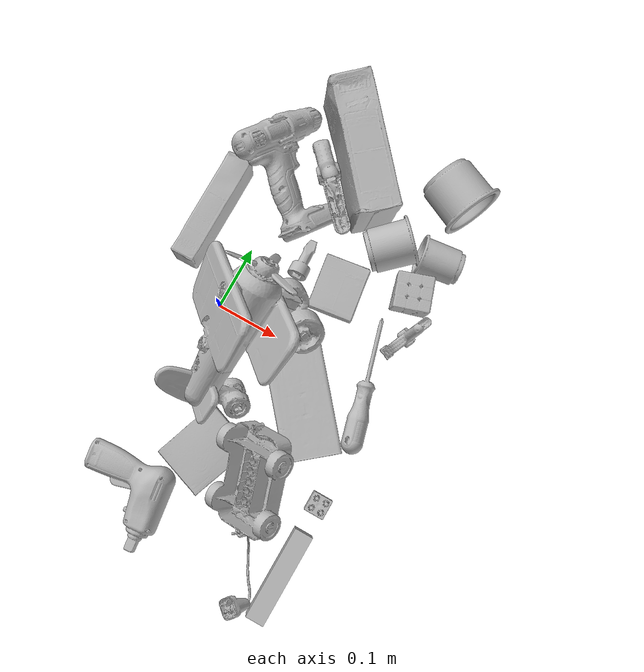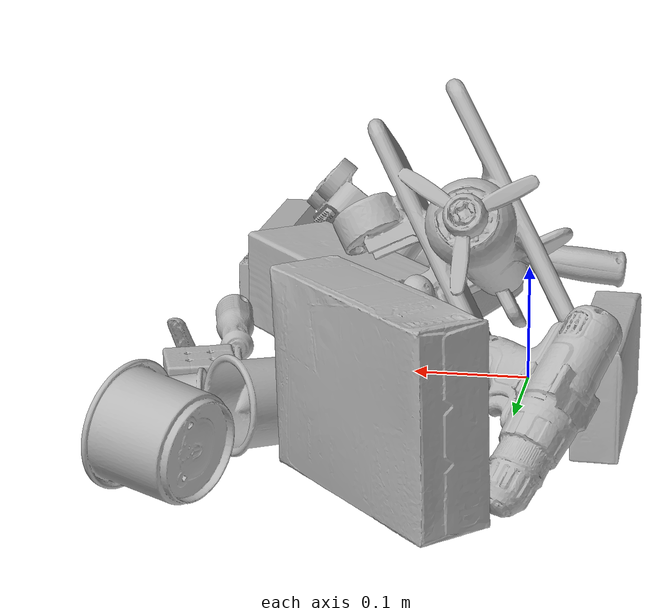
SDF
<sdf version="1.4">
  <world name="default">
    <light name="light1" type="point">
      <pose>0 0 1 0 0 0</pose>
      <diffuse>3 3 3 1</diffuse>
      <specular>3 3 3 1</specular>
    </light>
    <light name="light2" type="point">
      <pose>0 0.5 2 0 0 0</pose>
      <diffuse>1 1 1 1</diffuse>
      <specular>1 1 1 1</specular>
    </light>
    <light name="light3" type="point">
      <pose>0 0.5 2 0 0 0</pose>
      <diffuse>3 3 3 1</diffuse>
      <specular>3 3 3 1</specular>
    </light>
    <scene>
      <ambient>0.7 0.7 0.7</ambient>
    </scene>
    <model name="box21">
      <link name="link_box21">
        <collision name="default">
          <geometry>
            <mesh>
              <uri>model://cracker_box/collision_meshes/collision.obj</uri>
              <scale>1.0 1.0 1.0</scale>
            </mesh>
          </geometry>
          <surface>
            <friction>
              <ode>
                <mu>0.5</mu>
                <mu2>0.5</mu2>
              </ode>
            </friction>
          <contact>
        <ode>
            <max_vel>0</max_vel>
            <min_depth>0.0001</min_depth>
            <kp>1e8</kp>
        </ode>
    </contact></surface>
        </collision>
        <visual name="default">
          <geometry>
            <mesh>
              <uri>model://cracker_box/visual_meshes/visual.dae</uri>
              <scale>1.0 1.0 1.0</scale>
            </mesh>
          </geometry>
        </visual>
        <inertial>
          <mass>2.2869980335235596</mass>
          <pose>0.0009464151225984097 0.0002543425071053207 -0.0017029535956680775 -0.0003162075418873318 -0.011106487737663914 0.0025467956997025456</pose>
          <inertia>
            <ixx>0.005817102</ixx>
            <iyy>0.009605178</iyy>
            <izz>0.013707472</izz>
            <ixy>0</ixy>
            <ixz>0</ixz>
            <iyz>0</iyz>
          </inertia>
        </inertial>
      </link>
      <pose>0.07642360776662827 0.2986048460006714 0.08175765722990036 1.5452337117644157 0.009040082936226641 -0.8332308012464151</pose>
    </model>
    <model name="box22">
      <link name="link_box22">
        <collision name="default">
          <geometry>
            <mesh>
              <uri>model://pudding_box/collision_meshes/collision.obj</uri>
              <scale>1.0 1.0 1.0</scale>
            </mesh>
          </geometry>
          <surface>
            <friction>
              <ode>
                <mu>0.5</mu>
                <mu2>0.5</mu2>
              </ode>
            </friction>
          <contact>
        <ode>
            <max_vel>0</max_vel>
            <min_depth>0.0001</min_depth>
            <kp>1e8</kp>
        </ode>
    </contact></surface>
        </collision>
        <visual name="default">
          <geometry>
            <mesh>
              <uri>model://pudding_box/visual_meshes/visual.dae</uri>
              <scale>1.0 1.0 1.0</scale>
            </mesh>
          </geometry>
        </visual>
        <inertial>
          <mass>0.5370154976844788</mass>
          <pose>0.0004894821904599667 0.0008067885646596551 -0.0005188827635720372 0.005213101796859606 -0.006603800100757192 0.02007981956729938</pose>
          <inertia>
            <ixx>0.0006070684</ixx>
            <iyy>0.00040843996</iyy>
            <izz>0.00089649507</izz>
            <ixy>0</ixy>
            <ixz>0</ixz>
            <iyz>0</iyz>
          </inertia>
        </inertial>
      </link>
      <pose>0.09227722883224487 -0.20495690405368805 0.019725816324353218 0.02234562550926183 -0.011389973587738375 2.7917386545931206</pose>
    </model>
    <model name="box23">
      <link name="link_box23">
        <collision name="default">
          <geometry>
            <mesh>
              <uri>model://jenga/collision_meshes/collision.obj</uri>
              <scale>1.0 1.0 1.0</scale>
            </mesh>
          </geometry>
          <surface>
            <friction>
              <ode>
                <mu>0.5</mu>
                <mu2>0.5</mu2>
              </ode>
            </friction>
          <contact>
        <ode>
            <max_vel>0</max_vel>
            <min_depth>0.0001</min_depth>
            <kp>1e8</kp>
        </ode>
    </contact></surface>
        </collision>
        <visual name="default">
          <geometry>
            <mesh>
              <uri>model://jenga/visual_meshes/visual.dae</uri>
              <scale>1.0 1.0 1.0</scale>
            </mesh>
          </geometry>
        </visual>
        <inertial>
          <mass>0.17325031757354736</mass>
          <pose>-2.502855807051674e-07 -0.0001025000965455547 -4.0923401684267446e-05 0.0 -7.34215461761844e-07 0.0</pose>
          <inertia>
            <ixx>4.7942573e-05</ixx>
            <iyy>0.00032485754</iyy>
            <izz>0.00034681303</izz>
            <ixy>0</ixy>
            <ixz>0</ixz>
            <iyz>0</iyz>
          </inertia>
        </inertial>
      </link>
      <pose>0.2843685746192932 -0.31320029497146606 0.02470194734632969 1.5774979266119706 -1.3326990047705206e-07 1.5676520335808726</pose>
    </model>
    <model name="cup1">
      <link name="link_cup1">
        <collision name="default">
          <geometry>
            <mesh>
              <uri>model://c_cups/collision_meshes/collision.obj</uri>
              <scale>1.0 1.0 1.0</scale>
            </mesh>
          </geometry>
          <surface>
            <friction>
              <ode>
                <mu>0.5</mu>
                <mu2>0.5</mu2>
              </ode>
            </friction>
          <contact>
        <ode>
            <max_vel>0</max_vel>
            <min_depth>0.0001</min_depth>
            <kp>1e8</kp>
        </ode>
    </contact></surface>
        </collision>
        <visual name="default">
          <geometry>
            <mesh>
              <uri>model://c_cups/visual_meshes/visual.dae</uri>
              <scale>1.0 1.0 1.0</scale>
            </mesh>
          </geometry>
        </visual>
        <inertial>
          <mass>0.033937059342861176</mass>
          <pose>0.0007237257086671889 0.002015391131862998 -0.0012750985333696008 0.3021568203324006 0.0134615240317058 -0.08771816491093205</pose>
          <inertia>
            <ixx>2.5238536e-05</ixx>
            <iyy>2.4792533e-05</iyy>
            <izz>2.2320162e-05</izz>
            <ixy>0</ixy>
            <ixz>0</ixz>
            <iyz>0</iyz>
          </inertia>
        </inertial>
      </link>
      <pose>0.26281049847602844 0.22354303300380707 0.030400950461626053 -1.3877668360077617 -1.0193759964004439 1.570089704909422</pose>
    </model>
    <model name="cup2">
      <link name="link_cup2">
        <collision name="default">
          <geometry>
            <mesh>
              <uri>model://f_cups/collision_meshes/collision.obj</uri>
              <scale>1.0 1.0 1.0</scale>
            </mesh>
          </geometry>
          <surface>
            <friction>
              <ode>
                <mu>0.5</mu>
                <mu2>0.5</mu2>
              </ode>
            </friction>
          <contact>
        <ode>
            <max_vel>0</max_vel>
            <min_depth>0.0001</min_depth>
            <kp>1e8</kp>
        </ode>
    </contact></surface>
        </collision>
        <visual name="default">
          <geometry>
            <mesh>
              <uri>model://f_cups/visual_meshes/visual.dae</uri>
              <scale>1.0 1.0 1.0</scale>
            </mesh>
          </geometry>
        </visual>
        <inertial>
          <mass>0.10278050601482391</mass>
          <pose>-0.003171466989442706 -0.0006240068469196558 -0.003655537962913513 0.7862283183637603 -0.2607933822369466 -0.1823733550036739</pose>
          <inertia>
            <ixx>9.661645e-05</ixx>
            <iyy>0.00010135175</iyy>
            <izz>0.000105510015</izz>
            <ixy>0</ixy>
            <ixz>0</ixz>
            <iyz>0</iyz>
          </inertia>
        </inertial>
      </link>
      <pose>0.18506300449371338 0.20598943531513214 0.03717263787984848 1.4751300102046232 0.18538346134482223 2.3107758994582586</pose>
    </model>
    <model name="box11">
      <link name="link_box11">
        <collision name="default">
          <geometry>
            <mesh>
              <uri>model://wood_block/collision_meshes/collision.obj</uri>
              <scale>1.0 1.0 1.0</scale>
            </mesh>
          </geometry>
          <surface>
            <friction>
              <ode>
                <mu>0.5</mu>
                <mu2>0.5</mu2>
              </ode>
            </friction>
          <contact>
        <ode>
            <max_vel>0</max_vel>
            <min_depth>0.0001</min_depth>
            <kp>1e8</kp>
        </ode>
    </contact></surface>
        </collision>
        <visual name="default">
          <geometry>
            <mesh>
              <uri>model://wood_block/visual_meshes/visual.dae</uri>
              <scale>1.0 1.0 1.0</scale>
            </mesh>
          </geometry>
        </visual>
        <inertial>
          <mass>2.321592330932617</mass>
          <pose>-5.813315056002466e-06 -0.000570809468626976 0.0002640858292579651 -0.052209755297172346 -0.005192694580027673 -0.006861376555374886</pose>
          <inertia>
            <ixx>0.0031066423</ixx>
            <iyy>0.009813884</iyy>
            <izz>0.009777175</izz>
            <ixy>0</ixy>
            <ixz>0</ixz>
            <iyz>0</iyz>
          </inertia>
        </inertial>
      </link>
      <pose>0.1743258535861969 -0.05588394030928612 0.045591291040182114 3.1414547272408853 -0.005752191362779977 2.270790521032804</pose>
    </model>
    <model name="box12">
      <link name="link_box12">
        <collision name="default">
          <geometry>
            <mesh>
              <uri>model://gelatin_box/collision_meshes/collision.obj</uri>
              <scale>1.0 1.0 1.0</scale>
            </mesh>
          </geometry>
          <surface>
            <friction>
              <ode>
                <mu>0.5</mu>
                <mu2>0.5</mu2>
              </ode>
            </friction>
          <contact>
        <ode>
            <max_vel>0</max_vel>
            <min_depth>0.0001</min_depth>
            <kp>1e8</kp>
        </ode>
    </contact></surface>
        </collision>
        <visual name="default">
          <geometry>
            <mesh>
              <uri>model://gelatin_box/visual_meshes/visual.dae</uri>
              <scale>1.0 1.0 1.0</scale>
            </mesh>
          </geometry>
        </visual>
        <inertial>
          <mass>0.2263340801000595</mass>
          <pose>0.0004319618456065655 0.00011156871914863586 -0.00036403207923285663 -0.001050371981036731 -0.004755818689382226 0.016440561334450605</pose>
          <inertia>
            <ixx>0.00015977336</ixx>
            <iyy>0.00011412529</iyy>
            <izz>0.00024321067</izz>
            <ixy>0</ixy>
            <ixz>0</ixz>
            <iyz>0</iyz>
          </inertia>
        </inertial>
      </link>
      <pose>0.14812417328357697 0.11339707672595978 0.014580637216567993 -3.1258657428454337 -0.025719267324088815 0.1459918071344435</pose>
    </model>
    <model name="box13">
      <link name="link_box13">
        <collision name="default">
          <geometry>
            <mesh>
              <uri>model://sugar_box/collision_meshes/collision.obj</uri>
              <scale>1.0 1.0 1.0</scale>
            </mesh>
          </geometry>
          <surface>
            <friction>
              <ode>
                <mu>0.5</mu>
                <mu2>0.5</mu2>
              </ode>
            </friction>
          <contact>
        <ode>
            <max_vel>0</max_vel>
            <min_depth>0.0001</min_depth>
            <kp>1e8</kp>
        </ode>
    </contact></surface>
        </collision>
        <visual name="default">
          <geometry>
            <mesh>
              <uri>model://sugar_box/visual_meshes/visual.dae</uri>
              <scale>1.0 1.0 1.0</scale>
            </mesh>
          </geometry>
        </visual>
        <inertial>
          <mass>0.4976349174976349</mass>
          <pose>0.0010343727190047503 3.849109634757042e-05 -0.00036364805418998003 -0.0004046263004245651 0.001050663405794887 0.002615379021776999</pose>
          <inertia>
            <ixx>0.0004146281</ixx>
            <iyy>0.0013401629</iyy>
            <izz>0.0016043353</izz>
            <ixy>0</ixy>
            <ixz>0</ixz>
            <iyz>0</iyz>
          </inertia>
        </inertial>
      </link>
      <pose>-0.07693026214838028 0.11769822239875793 0.04652085527777672 1.5625406749442026 0.001469083262630494 1.5600469188925434</pose>
    </model>
    <model name="box14">
      <link name="link_box14">
        <collision name="default">
          <geometry>
            <mesh>
              <uri>model://rubiks_cube/collision_meshes/collision.obj</uri>
              <scale>1.0 1.0 1.0</scale>
            </mesh>
          </geometry>
          <surface>
            <friction>
              <ode>
                <mu>0.5</mu>
                <mu2>0.5</mu2>
              </ode>
            </friction>
          <contact>
        <ode>
            <max_vel>0</max_vel>
            <min_depth>0.0001</min_depth>
            <kp>1e8</kp>
        </ode>
    </contact></surface>
        </collision>
        <visual name="default">
          <geometry>
            <mesh>
              <uri>model://rubiks_cube/visual_meshes/visual.dae</uri>
              <scale>1.0 1.0 1.0</scale>
            </mesh>
          </geometry>
        </visual>
        <inertial>
          <mass>0.2531126141548157</mass>
          <pose>2.6721041649580002e-05 5.2569666877388954e-05 -7.264316536748083e-06 -0.05467274129792389 -0.0981396008906979 -0.0344563195746163</pose>
          <inertia>
            <ixx>0.00013986173</ixx>
            <iyy>0.00013920949</iyy>
            <izz>0.00014102072</izz>
            <ixy>0</ixy>
            <ixz>0</ixz>
            <iyz>0</iyz>
          </inertia>
        </inertial>
      </link>
      <pose>0.250975102186203 0.15977847576141357 0.02867899462580681 -1.6350292372501812e-06 -4.811969998222924e-06 1.8902892156201194</pose>
    </model>
    <model name="cup15">
      <link name="link_cup15">
        <collision name="default">
          <geometry>
            <mesh>
              <uri>model://j_cups/collision_meshes/collision.obj</uri>
              <scale>1.0 1.0 1.0</scale>
            </mesh>
          </geometry>
          <surface>
            <friction>
              <ode>
                <mu>0.5</mu>
                <mu2>0.5</mu2>
              </ode>
            </friction>
          <contact>
        <ode>
            <max_vel>0</max_vel>
            <min_depth>0.0001</min_depth>
            <kp>1e8</kp>
        </ode>
    </contact></surface>
        </collision>
        <visual name="default">
          <geometry>
            <mesh>
              <uri>model://j_cups/visual_meshes/visual.dae</uri>
              <scale>1.0 1.0 1.0</scale>
            </mesh>
          </geometry>
        </visual>
        <inertial>
          <mass>0.12765173614025116</mass>
          <pose>0.0006164864171296358 0.0005398980574682355 -0.0013479006011039019 0.030303852295551513 0.03757989298695449 0.4386938541947324</pose>
          <inertia>
            <ixx>0.00018743309</ixx>
            <iyy>0.00018938213</iyy>
            <izz>0.0002160715</izz>
            <ixy>0</ixy>
            <ixz>0</ixz>
            <iyz>0</iyz>
          </inertia>
        </inertial>
      </link>
      <pose>0.23703286051750183 0.3266148269176483 0.047030575573444366 -1.1348675793045175 -1.2879766357241667 -2.4163097315958804</pose>
    </model>
    <model name="toy1">
      <link name="link_toy1">
        <collision name="default">
          <geometry>
            <mesh>
              <uri>model://f_lego_duplo/collision_meshes/collision.obj</uri>
              <scale>1.0 1.0 1.0</scale>
            </mesh>
          </geometry>
          <surface>
            <friction>
              <ode>
                <mu>0.5</mu>
                <mu2>0.5</mu2>
              </ode>
            </friction>
          <contact>
        <ode>
            <max_vel>0</max_vel>
            <min_depth>0.0001</min_depth>
            <kp>1e8</kp>
        </ode>
    </contact></surface>
        </collision>
        <visual name="default">
          <geometry>
            <mesh>
              <uri>model://f_lego_duplo/visual_meshes/visual.dae</uri>
              <scale>1.0 1.0 1.0</scale>
            </mesh>
          </geometry>
        </visual>
        <inertial>
          <mass>0.04013235494494438</mass>
          <pose>2.369376306887716e-05 0.00013393163681030273 0.0018837876850739121 0.029838734112773806 -0.014424842824784668 -0.6756708500035773</pose>
          <inertia>
            <ixx>8.480189e-06</ixx>
            <iyy>8.555736e-06</iyy>
            <izz>7.361164e-06</izz>
            <ixy>0</ixy>
            <ixz>0</ixz>
            <iyz>0</iyz>
          </inertia>
        </inertial>
      </link>
      <pose>0.28372010588645935 -0.1919807344675064 0.021870998665690422 5.5897316216656684e-08 9.731289608670825e-08 0.0003691152462295779</pose>
    </model>
    <model name="toy2">
      <link name="link_toy2">
        <collision name="default">
          <geometry>
            <mesh>
              <uri>model://e_toy_airplane/collision_meshes/collision.obj</uri>
              <scale>1.0 1.0 1.0</scale>
            </mesh>
          </geometry>
          <surface>
            <friction>
              <ode>
                <mu>0.5</mu>
                <mu2>0.5</mu2>
              </ode>
            </friction>
          <contact>
        <ode>
            <max_vel>0</max_vel>
            <min_depth>0.0001</min_depth>
            <kp>1e8</kp>
        </ode>
    </contact></surface>
        </collision>
        <visual name="default">
          <geometry>
            <mesh>
              <uri>model://e_toy_airplane/visual_meshes/visual.dae</uri>
              <scale>1.0 1.0 1.0</scale>
            </mesh>
          </geometry>
        </visual>
        <inertial>
          <mass>0.030105752870440483</mass>
          <pose>0.00011740480840671808 -2.248285454697907e-05 -0.011187204159796238 0.0055184715057391125 0.009228317867647443 0.150413097465581</pose>
          <inertia>
            <ixx>9.18862e-06</ixx>
            <iyy>9.094625e-06</iyy>
            <izz>2.761542e-06</izz>
            <ixy>0</ixy>
            <ixz>0</ixz>
            <iyz>0</iyz>
          </inertia>
        </inertial>
      </link>
      <pose>0.07934314012527466 0.12911579012870789 0.010332439094781876 2.425658909500455 -1.197790293794063 2.377522766539584</pose>
    </model>
    <model name="toy3">
      <link name="link_toy3">
        <collision name="default">
          <geometry>
            <mesh>
              <uri>model://g_lego_duplo/collision_meshes/collision.obj</uri>
              <scale>1.0 1.0 1.0</scale>
            </mesh>
          </geometry>
          <surface>
            <friction>
              <ode>
                <mu>0.5</mu>
                <mu2>0.5</mu2>
              </ode>
            </friction>
          <contact>
        <ode>
            <max_vel>0</max_vel>
            <min_depth>0.0001</min_depth>
            <kp>1e8</kp>
        </ode>
    </contact></surface>
        </collision>
        <visual name="default">
          <geometry>
            <mesh>
              <uri>model://g_lego_duplo/visual_meshes/visual.dae</uri>
              <scale>1.0 1.0 1.0</scale>
            </mesh>
          </geometry>
        </visual>
        <inertial>
          <mass>0.4529305100440979</mass>
          <pose>-0.050047703087329865 0.0017554633086547256 0.0038806775119155645 0.010963008114131517 0.03810824387856379 -0.09653032518797504</pose>
          <inertia>
            <ixx>0.00065630145</ixx>
            <iyy>0.0019842102</iyy>
            <izz>0.0024823209</izz>
            <ixy>0</ixy>
            <ixz>0</ixz>
            <iyz>0</iyz>
          </inertia>
        </inertial>
      </link>
      <pose>0.19825401902198792 -0.2611597180366516 0.05431489646434784 -2.4107783311412385 0.34082740779353776 -1.258285916445851</pose>
    </model>
    <model name="toy4">
      <link name="link_toy4">
        <collision name="default">
          <geometry>
            <mesh>
              <uri>model://b_lego_duplo/collision_meshes/collision.obj</uri>
              <scale>1.0 1.0 1.0</scale>
            </mesh>
          </geometry>
          <surface>
            <friction>
              <ode>
                <mu>0.5</mu>
                <mu2>0.5</mu2>
              </ode>
            </friction>
          <contact>
        <ode>
            <max_vel>0</max_vel>
            <min_depth>0.0001</min_depth>
            <kp>1e8</kp>
        </ode>
    </contact></surface>
        </collision>
        <visual name="default">
          <geometry>
            <mesh>
              <uri>model://b_lego_duplo/visual_meshes/visual.dae</uri>
              <scale>1.0 1.0 1.0</scale>
            </mesh>
          </geometry>
        </visual>
        <inertial>
          <mass>0.018499748781323433</mass>
          <pose>-0.00011053003981942311 -9.15247255761642e-06 0.001929429592564702 -0.037494549291744686 -0.026354734626349716 0.4518828938821803</pose>
          <inertia>
            <ixx>3.786112e-06</ixx>
            <iyy>3.8115643e-06</iyy>
            <izz>3.3733036e-06</izz>
            <ixy>0</ixy>
            <ixz>0</ixz>
            <iyz>0</iyz>
          </inertia>
        </inertial>
      </link>
      <pose>0.18196789920330048 -0.1755325049161911 0.01615239679813385 -3.1233005130983664 1.5624415768349118 -1.033879399561042</pose>
    </model>
    <model name="toy5">
      <link name="link_toy5">
        <collision name="default">
          <geometry>
            <mesh>
              <uri>model://b_toy_airplane/collision_meshes/collision.obj</uri>
              <scale>1.0 1.0 1.0</scale>
            </mesh>
          </geometry>
          <surface>
            <friction>
              <ode>
                <mu>0.5</mu>
                <mu2>0.5</mu2>
              </ode>
            </friction>
          <contact>
        <ode>
            <max_vel>0</max_vel>
            <min_depth>0.0001</min_depth>
            <kp>1e8</kp>
        </ode>
    </contact></surface>
        </collision>
        <visual name="default">
          <geometry>
            <mesh>
              <uri>model://b_toy_airplane/visual_meshes/visual.dae</uri>
              <scale>1.0 1.0 1.0</scale>
            </mesh>
          </geometry>
        </visual>
        <inertial>
          <mass>0.38904744386672974</mass>
          <pose>0.00508136348798871 0.004015582147985697 0.00954306498169899 -0.040018071915393034 -0.04022181905785318 -0.5601502897874057</pose>
          <inertia>
            <ixx>0.00072227366</ixx>
            <iyy>0.0002886998</iyy>
            <izz>0.0008985803</izz>
            <ixy>0</ixy>
            <ixz>0</ixz>
            <iyz>0</iyz>
          </inertia>
        </inertial>
      </link>
      <pose>0.030226556584239006 -0.30101969838142395 0.016977878287434578 0.18487657136268104 0.11349915661545076 -1.4455842481957561</pose>
    </model>
    <model name="toy6">
      <link name="link_toy6">
        <collision name="default">
          <geometry>
            <mesh>
              <uri>model://a_toy_airplane/collision_meshes/collision.obj</uri>
              <scale>1.0 1.0 1.0</scale>
            </mesh>
          </geometry>
          <surface>
            <friction>
              <ode>
                <mu>0.5</mu>
                <mu2>0.5</mu2>
              </ode>
            </friction>
          <contact>
        <ode>
            <max_vel>0</max_vel>
            <min_depth>0.0001</min_depth>
            <kp>1e8</kp>
        </ode>
    </contact></surface>
        </collision>
        <visual name="default">
          <geometry>
            <mesh>
              <uri>model://a_toy_airplane/visual_meshes/visual.dae</uri>
              <scale>1.0 1.0 1.0</scale>
            </mesh>
          </geometry>
        </visual>
        <inertial>
          <mass>2.344027519226074</mass>
          <pose>0.025165099650621414 -0.003707322059199214 -0.0011962436838075519 -0.012016950381748406 -0.14663507119063698 0.004149124939747771</pose>
          <inertia>
            <ixx>0.008512287</ixx>
            <iyy>0.012404123</iyy>
            <izz>0.014523712</izz>
            <ixy>0</ixy>
            <ixz>0</ixz>
            <iyz>0</iyz>
          </inertia>
        </inertial>
      </link>
      <pose>0.04519807919859886 -0.037519581615924835 0.10102620720863342 -0.9810159215356118 -0.379012198442214 1.3799246676024555</pose>
    </model>
    <model name="hardware1">
      <link name="link_hardware1">
        <collision name="default">
          <geometry>
            <mesh>
              <uri>model://power_drill/collision_meshes/collision.obj</uri>
              <scale>1.0 1.0 1.0</scale>
            </mesh>
          </geometry>
          <surface>
            <friction>
              <ode>
                <mu>0.5</mu>
                <mu2>0.5</mu2>
              </ode>
            </friction>
          <contact>
        <ode>
            <max_vel>0</max_vel>
            <min_depth>0.0001</min_depth>
            <kp>1e8</kp>
        </ode>
    </contact></surface>
        </collision>
        <visual name="default">
          <geometry>
            <mesh>
              <uri>model://power_drill/visual_meshes/visual.dae</uri>
              <scale>1.0 1.0 1.0</scale>
            </mesh>
          </geometry>
        </visual>
        <inertial>
          <mass>0.3504050374031067</mass>
          <pose>-0.014780547469854355 0.014369429089128971 0.0012414171360433102 0.0046091621872236125 0.004073022304059966 -0.18362696816981472</pose>
          <inertia>
            <ixx>0.001427917</ixx>
            <iyy>0.0005618108</iyy>
            <izz>0.0018858167</izz>
            <ixy>0</ixy>
            <ixz>0</ixz>
            <iyz>0</iyz>
          </inertia>
        </inertial>
      </link>
      <pose>0.0049886759370565414 0.23180387914180756 0.05289941281080246 0.22365477012943372 0.6829141063987493 1.0830324239552784</pose>
    </model>
    <model name="hardware2">
      <link name="link_hardware2">
        <collision name="default">
          <geometry>
            <mesh>
              <uri>model://phillips_screwdriver/collision_meshes/collision.obj</uri>
              <scale>1.0 1.0 1.0</scale>
            </mesh>
          </geometry>
          <surface>
            <friction>
              <ode>
                <mu>0.5</mu>
                <mu2>0.5</mu2>
              </ode>
            </friction>
          <contact>
        <ode>
            <max_vel>0</max_vel>
            <min_depth>0.0001</min_depth>
            <kp>1e8</kp>
        </ode>
    </contact></surface>
        </collision>
        <visual name="default">
          <geometry>
            <mesh>
              <uri>model://phillips_screwdriver/visual_meshes/visual.dae</uri>
              <scale>1.0 1.0 1.0</scale>
            </mesh>
          </geometry>
        </visual>
        <inertial>
          <mass>0.06613585352897644</mass>
          <pose>-0.04777182638645172 0.0010362302418798208 -0.000455554953077808 -0.157256923583716 0.005850995849984215 -0.0021567369270283215</pose>
          <inertia>
            <ixx>7.770284e-06</ixx>
            <iyy>9.742579e-05</iyy>
            <izz>9.7508564e-05</izz>
            <ixy>0</ixy>
            <ixz>0</ixz>
            <iyz>0</iyz>
          </inertia>
        </inertial>
      </link>
      <pose>0.2581939995288849 -0.0002223961055278778 0.015013089403510094 -2.2503658697905218 0.04974339907015083 1.841850258468456</pose>
    </model>
    <model name="hardware3">
      <link name="link_hardware3">
        <collision name="default">
          <geometry>
            <mesh>
              <uri>model://large_clamp/collision_meshes/collision.obj</uri>
              <scale>1.0 1.0 1.0</scale>
            </mesh>
          </geometry>
          <surface>
            <friction>
              <ode>
                <mu>0.5</mu>
                <mu2>0.5</mu2>
              </ode>
            </friction>
          <contact>
        <ode>
            <max_vel>0</max_vel>
            <min_depth>0.0001</min_depth>
            <kp>1e8</kp>
        </ode>
    </contact></surface>
        </collision>
        <visual name="default">
          <geometry>
            <mesh>
              <uri>model://large_clamp/visual_meshes/visual.dae</uri>
              <scale>1.0 1.0 1.0</scale>
            </mesh>
          </geometry>
        </visual>
        <inertial>
          <mass>0.0812491774559021</mass>
          <pose>0.00636935792863369 0.00035856812610290945 -0.0001839803153416142 -0.0021330695247891995 0.009671592144941876 0.026633191629386817</pose>
          <inertia>
            <ixx>7.1684015e-05</ixx>
            <iyy>0.00013613176</iyy>
            <izz>0.00019693196</izz>
            <ixy>0</ixy>
            <ixz>0</ixz>
            <iyz>0</iyz>
          </inertia>
        </inertial>
      </link>
      <pose>0.04958570748567581 0.25256142020225525 0.060300737619400024 -1.6504776883491477 0.7206737918284608 2.2803757041035415</pose>
    </model>
    <model name="hardware4">
      <link name="link_hardware4">
        <collision name="default">
          <geometry>
            <mesh>
              <uri>model://medium_clamp/collision_meshes/collision.obj</uri>
              <scale>1.0 1.0 1.0</scale>
            </mesh>
          </geometry>
          <surface>
            <friction>
              <ode>
                <mu>0.5</mu>
                <mu2>0.5</mu2>
              </ode>
            </friction>
          <contact>
        <ode>
            <max_vel>0</max_vel>
            <min_depth>0.0001</min_depth>
            <kp>1e8</kp>
        </ode>
    </contact></surface>
        </collision>
        <visual name="default">
          <geometry>
            <mesh>
              <uri>model://medium_clamp/visual_meshes/visual.dae</uri>
              <scale>1.0 1.0 1.0</scale>
            </mesh>
          </geometry>
        </visual>
        <inertial>
          <mass>0.04165364429354668</mass>
          <pose>0.0053909956477582455 0.00039532381924800575 -0.0001222159044118598 -0.0012269202016338824 0.0025845009837354585 0.038207769727488725</pose>
          <inertia>
            <ixx>1.134795e-05</ixx>
            <iyy>1.6514476e-05</iyy>
            <izz>2.5437248e-05</izz>
            <ixy>0</ixy>
            <ixz>0</ixz>
            <iyz>0</iyz>
          </inertia>
        </inertial>
      </link>
      <pose>0.27589619159698486 0.09675758332014084 0.0255610179156065 -1.5936638653280497 0.377340787685645 -1.9814905213439507</pose>
    </model>
  <physics type="ode">
      <max_contacts>50</max_contacts>
      <ode>
        <solver>
          <type>quick</type>
          <iters>75</iters>
        </solver>
        <constraints>
          <contact_max_correcting_vel>0</contact_max_correcting_vel>
          <contact_surface_layer>0</contact_surface_layer>
        </constraints>
      </ode>
    </physics></world>
</sdf>
